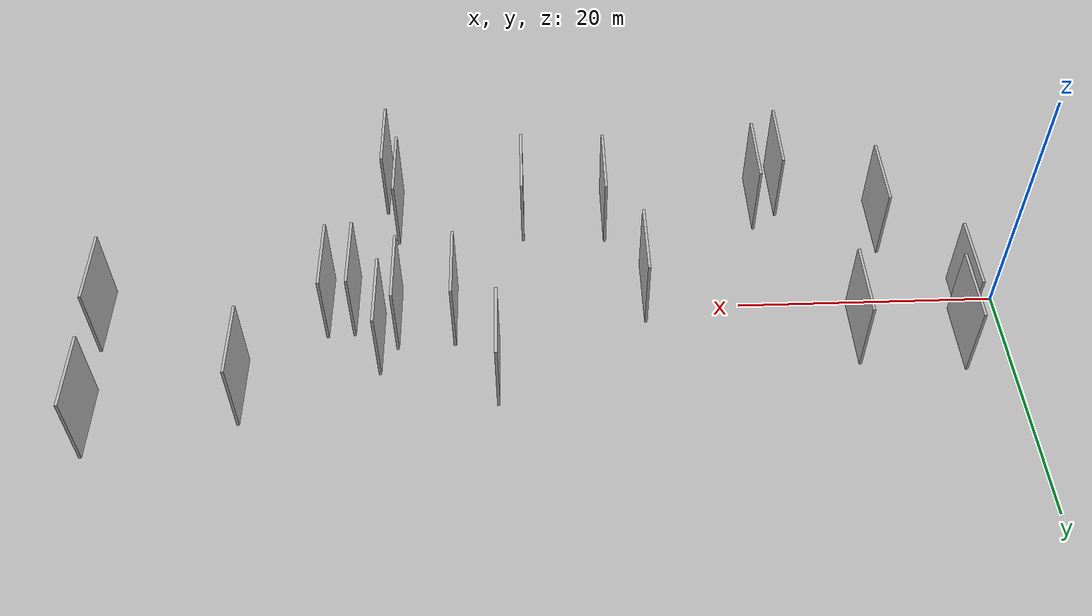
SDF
<?xml version="1.0" encoding="utf-8"?>

<sdf version="1.6">

   <world name="default">

      <gui fullscreen="0">

         <camera name="user_camera">

            <pose>-15 0 4.57585 0 0 0</pose>

            <view_controller>orbit</view_controller>

         </camera>

      </gui>

      <scene>

         <sky>

           <clouds>

             <speed>12</speed>

           </clouds>

         </sky>

         <ambient>0.4 0.4 0.4 1</ambient>

         <background>0.7 0.7 0.7 1</background>

         <shadows>1</shadows>

      </scene>

      <gravity>0 0 -9.8066</gravity>

      <magnetic_field>6e-06 2.3e-05 -4.2e-05</magnetic_field>

      <physics default="0" name="default_physics" type="ode">

         <ode>

            <solver>

               <type>quick</type>

               <iters>10</iters>

               <sor>1.0</sor>

               <use_dynamic_moi_rescaling>0</use_dynamic_moi_rescaling>

            </solver>

            <constraints>

               <cfm>0</cfm>

               <erp>0.2</erp>

               <contact_max_correcting_vel>100</contact_max_correcting_vel>

               <contact_surface_layer>0.001</contact_surface_layer>

            </constraints>

         </ode>

         <max_step_size>0.004</max_step_size>

         <real_time_factor>1</real_time_factor>

         <real_time_update_rate>250</real_time_update_rate>

      </physics>

      <light name="sun" type="directional">

         <cast_shadows>1</cast_shadows>

         <pose>0 0 10 0 0 0</pose>

         <diffuse>0.8 0.8 0.8 1</diffuse>

         <specular>0.2 0.2 0.2 1</specular>

         <attenuation>

            <range>1000</range>

            <constant>0.9</constant>

            <linear>0.01</linear>

            <quadratic>0.001</quadratic>

         </attenuation>

         <direction>-0.5 0.1 -0.9</direction>

      </light>

      <include>

         <name>ground_plane_1</name>

         <uri>model://HANNAS_ground_plane</uri>

         <pose>0 0 0  0 0 0</pose>

      </include>

      <include>

         <name>ground_plane_2</name>

         <uri>model://HANNAS_ground_plane</uri>

         <pose>100 0 0  0 0 0</pose>

      </include>

      <model name="HANNAS_wall_1">

         <static>1</static>

         <pose frame="">38.8019 8.1428 2.5 0.000000 0.000000 1.570796</pose>

         <link name="link">

            <pose frame="">0 0 3.00 0 0 0</pose>

            <collision name="collision">

               <geometry>

                  <box>

                     <size>6.00 0.2 6.00</size>

                  </box>

               </geometry>

               <max_contacts>10</max_contacts>

               <surface>

                  <contact>

                     <ode/>

                  </contact>

                  <bounce/>

                  <friction>

                     <torsional>

                        <ode/>

                     </torsional>

                     <ode/>

                  </friction>

               </surface>

            </collision>

            <visual name="visual">

               <cast_shadows>0</cast_shadows>

               <geometry>

                  <box>

                     <size>6.00 0.2 6.00</size>

                  </box>

               </geometry>

               <material>

                  <script>

                     <uri>model://HANNAS_wall/materials/scripts</uri>

                     <uri>model://HANNAS_wall/materials/textures</uri>

                     <name>vrc/HANNAS_wall</name>

                  </script>

               </material>

            </visual>

            <self_collide>0</self_collide>

            <enable_wind>0</enable_wind>

            <kinematic>0</kinematic>

         </link>

      </model>

      <model name="HANNAS_wall_2">

         <static>1</static>

         <pose frame="">67.8202 11.7239 2.5 0.000000 0.000000 1.570796</pose>

         <link name="link">

            <pose frame="">0 0 3.00 0 0 0</pose>

            <collision name="collision">

               <geometry>

                  <box>

                     <size>6.00 0.2 6.00</size>

                  </box>

               </geometry>

               <max_contacts>10</max_contacts>

               <surface>

                  <contact>

                     <ode/>

                  </contact>

                  <bounce/>

                  <friction>

                     <torsional>

                        <ode/>

                     </torsional>

                     <ode/>

                  </friction>

               </surface>

            </collision>

            <visual name="visual">

               <cast_shadows>0</cast_shadows>

               <geometry>

                  <box>

                     <size>6.00 0.2 6.00</size>

                  </box>

               </geometry>

               <material>

                  <script>

                     <uri>model://HANNAS_wall/materials/scripts</uri>

                     <uri>model://HANNAS_wall/materials/textures</uri>

                     <name>vrc/HANNAS_wall</name>

                  </script>

               </material>

            </visual>

            <self_collide>0</self_collide>

            <enable_wind>0</enable_wind>

            <kinematic>0</kinematic>

         </link>

      </model>

      <model name="HANNAS_wall_3">

         <static>1</static>

         <pose frame="">27.6856 0.5977 2.5 0.000000 0.000000 1.570796</pose>

         <link name="link">

            <pose frame="">0 0 3.00 0 0 0</pose>

            <collision name="collision">

               <geometry>

                  <box>

                     <size>6.00 0.2 6.00</size>

                  </box>

               </geometry>

               <max_contacts>10</max_contacts>

               <surface>

                  <contact>

                     <ode/>

                  </contact>

                  <bounce/>

                  <friction>

                     <torsional>

                        <ode/>

                     </torsional>

                     <ode/>

                  </friction>

               </surface>

            </collision>

            <visual name="visual">

               <cast_shadows>0</cast_shadows>

               <geometry>

                  <box>

                     <size>6.00 0.2 6.00</size>

                  </box>

               </geometry>

               <material>

                  <script>

                     <uri>model://HANNAS_wall/materials/scripts</uri>

                     <uri>model://HANNAS_wall/materials/textures</uri>

                     <name>vrc/HANNAS_wall</name>

                  </script>

               </material>

            </visual>

            <self_collide>0</self_collide>

            <enable_wind>0</enable_wind>

            <kinematic>0</kinematic>

         </link>

      </model>

      <model name="HANNAS_wall_4">

         <static>1</static>

         <pose frame="">46.6783 -8.3228 2.5 0.000000 0.000000 1.570796</pose>

         <link name="link">

            <pose frame="">0 0 3.00 0 0 0</pose>

            <collision name="collision">

               <geometry>

                  <box>

                     <size>6.00 0.2 6.00</size>

                  </box>

               </geometry>

               <max_contacts>10</max_contacts>

               <surface>

                  <contact>

                     <ode/>

                  </contact>

                  <bounce/>

                  <friction>

                     <torsional>

                        <ode/>

                     </torsional>

                     <ode/>

                  </friction>

               </surface>

            </collision>

            <visual name="visual">

               <cast_shadows>0</cast_shadows>

               <geometry>

                  <box>

                     <size>6.00 0.2 6.00</size>

                  </box>

               </geometry>

               <material>

                  <script>

                     <uri>model://HANNAS_wall/materials/scripts</uri>

                     <uri>model://HANNAS_wall/materials/textures</uri>

                     <name>vrc/HANNAS_wall</name>

                  </script>

               </material>

            </visual>

            <self_collide>0</self_collide>

            <enable_wind>0</enable_wind>

            <kinematic>0</kinematic>

         </link>

      </model>

      <model name="HANNAS_wall_5">

         <static>1</static>

         <pose frame="">8.8817 -6.0696 2.5 0.000000 0.000000 1.570796</pose>

         <link name="link">

            <pose frame="">0 0 3.00 0 0 0</pose>

            <collision name="collision">

               <geometry>

                  <box>

                     <size>6.00 0.2 6.00</size>

                  </box>

               </geometry>

               <max_contacts>10</max_contacts>

               <surface>

                  <contact>

                     <ode/>

                  </contact>

                  <bounce/>

                  <friction>

                     <torsional>

                        <ode/>

                     </torsional>

                     <ode/>

                  </friction>

               </surface>

            </collision>

            <visual name="visual">

               <cast_shadows>0</cast_shadows>

               <geometry>

                  <box>

                     <size>6.00 0.2 6.00</size>

                  </box>

               </geometry>

               <material>

                  <script>

                     <uri>model://HANNAS_wall/materials/scripts</uri>

                     <uri>model://HANNAS_wall/materials/textures</uri>

                     <name>vrc/HANNAS_wall</name>

                  </script>

               </material>

            </visual>

            <self_collide>0</self_collide>

            <enable_wind>0</enable_wind>

            <kinematic>0</kinematic>

         </link>

      </model>

      <model name="HANNAS_wall_6">

         <static>1</static>

         <pose frame="">12.2418 5.2225 2.5 0.000000 0.000000 1.570796</pose>

         <link name="link">

            <pose frame="">0 0 3.00 0 0 0</pose>

            <collision name="collision">

               <geometry>

                  <box>

                     <size>6.00 0.2 6.00</size>

                  </box>

               </geometry>

               <max_contacts>10</max_contacts>

               <surface>

                  <contact>

                     <ode/>

                  </contact>

                  <bounce/>

                  <friction>

                     <torsional>

                        <ode/>

                     </torsional>

                     <ode/>

                  </friction>

               </surface>

            </collision>

            <visual name="visual">

               <cast_shadows>0</cast_shadows>

               <geometry>

                  <box>

                     <size>6.00 0.2 6.00</size>

                  </box>

               </geometry>

               <material>

                  <script>

                     <uri>model://HANNAS_wall/materials/scripts</uri>

                     <uri>model://HANNAS_wall/materials/textures</uri>

                     <name>vrc/HANNAS_wall</name>

                  </script>

               </material>

            </visual>

            <self_collide>0</self_collide>

            <enable_wind>0</enable_wind>

            <kinematic>0</kinematic>

         </link>

      </model>

      <model name="HANNAS_wall_7">

         <static>1</static>

         <pose frame="">3.9170 2.8404 2.5 0.000000 0.000000 1.570796</pose>

         <link name="link">

            <pose frame="">0 0 3.00 0 0 0</pose>

            <collision name="collision">

               <geometry>

                  <box>

                     <size>6.00 0.2 6.00</size>

                  </box>

               </geometry>

               <max_contacts>10</max_contacts>

               <surface>

                  <contact>

                     <ode/>

                  </contact>

                  <bounce/>

                  <friction>

                     <torsional>

                        <ode/>

                     </torsional>

                     <ode/>

                  </friction>

               </surface>

            </collision>

            <visual name="visual">

               <cast_shadows>0</cast_shadows>

               <geometry>

                  <box>

                     <size>6.00 0.2 6.00</size>

                  </box>

               </geometry>

               <material>

                  <script>

                     <uri>model://HANNAS_wall/materials/scripts</uri>

                     <uri>model://HANNAS_wall/materials/textures</uri>

                     <name>vrc/HANNAS_wall</name>

                  </script>

               </material>

            </visual>

            <self_collide>0</self_collide>

            <enable_wind>0</enable_wind>

            <kinematic>0</kinematic>

         </link>

      </model>

      <model name="HANNAS_wall_8">

         <static>1</static>

         <pose frame="">68.2535 2.0715 2.5 0.000000 0.000000 1.570796</pose>

         <link name="link">

            <pose frame="">0 0 3.00 0 0 0</pose>

            <collision name="collision">

               <geometry>

                  <box>

                     <size>6.00 0.2 6.00</size>

                  </box>

               </geometry>

               <max_contacts>10</max_contacts>

               <surface>

                  <contact>

                     <ode/>

                  </contact>

                  <bounce/>

                  <friction>

                     <torsional>

                        <ode/>

                     </torsional>

                     <ode/>

                  </friction>

               </surface>

            </collision>

            <visual name="visual">

               <cast_shadows>0</cast_shadows>

               <geometry>

                  <box>

                     <size>6.00 0.2 6.00</size>

                  </box>

               </geometry>

               <material>

                  <script>

                     <uri>model://HANNAS_wall/materials/scripts</uri>

                     <uri>model://HANNAS_wall/materials/textures</uri>

                     <name>vrc/HANNAS_wall</name>

                  </script>

               </material>

            </visual>

            <self_collide>0</self_collide>

            <enable_wind>0</enable_wind>

            <kinematic>0</kinematic>

         </link>

      </model>

      <model name="HANNAS_wall_9">

         <static>1</static>

         <pose frame="">36.8243 -8.3083 2.5 0.000000 0.000000 1.570796</pose>

         <link name="link">

            <pose frame="">0 0 3.00 0 0 0</pose>

            <collision name="collision">

               <geometry>

                  <box>

                     <size>6.00 0.2 6.00</size>

                  </box>

               </geometry>

               <max_contacts>10</max_contacts>

               <surface>

                  <contact>

                     <ode/>

                  </contact>

                  <bounce/>

                  <friction>

                     <torsional>

                        <ode/>

                     </torsional>

                     <ode/>

                  </friction>

               </surface>

            </collision>

            <visual name="visual">

               <cast_shadows>0</cast_shadows>

               <geometry>

                  <box>

                     <size>6.00 0.2 6.00</size>

                  </box>

               </geometry>

               <material>

                  <script>

                     <uri>model://HANNAS_wall/materials/scripts</uri>

                     <uri>model://HANNAS_wall/materials/textures</uri>

                     <name>vrc/HANNAS_wall</name>

                  </script>

               </material>

            </visual>

            <self_collide>0</self_collide>

            <enable_wind>0</enable_wind>

            <kinematic>0</kinematic>

         </link>

      </model>

      <model name="HANNAS_wall_10">

         <static>1</static>

         <pose frame="">47.4307 5.0204 2.5 0.000000 0.000000 1.570796</pose>

         <link name="link">

            <pose frame="">0 0 3.00 0 0 0</pose>

            <collision name="collision">

               <geometry>

                  <box>

                     <size>6.00 0.2 6.00</size>

                  </box>

               </geometry>

               <max_contacts>10</max_contacts>

               <surface>

                  <contact>

                     <ode/>

                  </contact>

                  <bounce/>

                  <friction>

                     <torsional>

                        <ode/>

                     </torsional>

                     <ode/>

                  </friction>

               </surface>

            </collision>

            <visual name="visual">

               <cast_shadows>0</cast_shadows>

               <geometry>

                  <box>

                     <size>6.00 0.2 6.00</size>

                  </box>

               </geometry>

               <material>

                  <script>

                     <uri>model://HANNAS_wall/materials/scripts</uri>

                     <uri>model://HANNAS_wall/materials/textures</uri>

                     <name>vrc/HANNAS_wall</name>

                  </script>

               </material>

            </visual>

            <self_collide>0</self_collide>

            <enable_wind>0</enable_wind>

            <kinematic>0</kinematic>

         </link>

      </model>

      <model name="HANNAS_wall_11">

         <static>1</static>

         <pose frame="">42.0297 2.3910 2.5 0.000000 0.000000 1.570796</pose>

         <link name="link">

            <pose frame="">0 0 3.00 0 0 0</pose>

            <collision name="collision">

               <geometry>

                  <box>

                     <size>6.00 0.2 6.00</size>

                  </box>

               </geometry>

               <max_contacts>10</max_contacts>

               <surface>

                  <contact>

                     <ode/>

                  </contact>

                  <bounce/>

                  <friction>

                     <torsional>

                        <ode/>

                     </torsional>

                     <ode/>

                  </friction>

               </surface>

            </collision>

            <visual name="visual">

               <cast_shadows>0</cast_shadows>

               <geometry>

                  <box>

                     <size>6.00 0.2 6.00</size>

                  </box>

               </geometry>

               <material>

                  <script>

                     <uri>model://HANNAS_wall/materials/scripts</uri>

                     <uri>model://HANNAS_wall/materials/textures</uri>

                     <name>vrc/HANNAS_wall</name>

                  </script>

               </material>

            </visual>

            <self_collide>0</self_collide>

            <enable_wind>0</enable_wind>

            <kinematic>0</kinematic>

         </link>

      </model>

      <model name="HANNAS_wall_12">

         <static>1</static>

         <pose frame="">4.5498 5.9838 2.5 0.000000 0.000000 1.570796</pose>

         <link name="link">

            <pose frame="">0 0 3.00 0 0 0</pose>

            <collision name="collision">

               <geometry>

                  <box>

                     <size>6.00 0.2 6.00</size>

                  </box>

               </geometry>

               <max_contacts>10</max_contacts>

               <surface>

                  <contact>

                     <ode/>

                  </contact>

                  <bounce/>

                  <friction>

                     <torsional>

                        <ode/>

                     </torsional>

                     <ode/>

                  </friction>

               </surface>

            </collision>

            <visual name="visual">

               <cast_shadows>0</cast_shadows>

               <geometry>

                  <box>

                     <size>6.00 0.2 6.00</size>

                  </box>

               </geometry>

               <material>

                  <script>

                     <uri>model://HANNAS_wall/materials/scripts</uri>

                     <uri>model://HANNAS_wall/materials/textures</uri>

                     <name>vrc/HANNAS_wall</name>

                  </script>

               </material>

            </visual>

            <self_collide>0</self_collide>

            <enable_wind>0</enable_wind>

            <kinematic>0</kinematic>

         </link>

      </model>

      <model name="HANNAS_wall_13">

         <static>1</static>

         <pose frame="">47.7464 -11.7925 2.5 0.000000 0.000000 1.570796</pose>

         <link name="link">

            <pose frame="">0 0 3.00 0 0 0</pose>

            <collision name="collision">

               <geometry>

                  <box>

                     <size>6.00 0.2 6.00</size>

                  </box>

               </geometry>

               <max_contacts>10</max_contacts>

               <surface>

                  <contact>

                     <ode/>

                  </contact>

                  <bounce/>

                  <friction>

                     <torsional>

                        <ode/>

                     </torsional>

                     <ode/>

                  </friction>

               </surface>

            </collision>

            <visual name="visual">

               <cast_shadows>0</cast_shadows>

               <geometry>

                  <box>

                     <size>6.00 0.2 6.00</size>

                  </box>

               </geometry>

               <material>

                  <script>

                     <uri>model://HANNAS_wall/materials/scripts</uri>

                     <uri>model://HANNAS_wall/materials/textures</uri>

                     <name>vrc/HANNAS_wall</name>

                  </script>

               </material>

            </visual>

            <self_collide>0</self_collide>

            <enable_wind>0</enable_wind>

            <kinematic>0</kinematic>

         </link>

      </model>

      <model name="HANNAS_wall_14">

         <static>1</static>

         <pose frame="">46.2533 2.6578 2.5 0.000000 0.000000 1.570796</pose>

         <link name="link">

            <pose frame="">0 0 3.00 0 0 0</pose>

            <collision name="collision">

               <geometry>

                  <box>

                     <size>6.00 0.2 6.00</size>

                  </box>

               </geometry>

               <max_contacts>10</max_contacts>

               <surface>

                  <contact>

                     <ode/>

                  </contact>

                  <bounce/>

                  <friction>

                     <torsional>

                        <ode/>

                     </torsional>

                     <ode/>

                  </friction>

               </surface>

            </collision>

            <visual name="visual">

               <cast_shadows>0</cast_shadows>

               <geometry>

                  <box>

                     <size>6.00 0.2 6.00</size>

                  </box>

               </geometry>

               <material>

                  <script>

                     <uri>model://HANNAS_wall/materials/scripts</uri>

                     <uri>model://HANNAS_wall/materials/textures</uri>

                     <name>vrc/HANNAS_wall</name>

                  </script>

               </material>

            </visual>

            <self_collide>0</self_collide>

            <enable_wind>0</enable_wind>

            <kinematic>0</kinematic>

         </link>

      </model>

      <model name="HANNAS_wall_15">

         <static>1</static>

         <pose frame="">57.2317 9.2502 2.5 0.000000 0.000000 1.570796</pose>

         <link name="link">

            <pose frame="">0 0 3.00 0 0 0</pose>

            <collision name="collision">

               <geometry>

                  <box>

                     <size>6.00 0.2 6.00</size>

                  </box>

               </geometry>

               <max_contacts>10</max_contacts>

               <surface>

                  <contact>

                     <ode/>

                  </contact>

                  <bounce/>

                  <friction>

                     <torsional>

                        <ode/>

                     </torsional>

                     <ode/>

                  </friction>

               </surface>

            </collision>

            <visual name="visual">

               <cast_shadows>0</cast_shadows>

               <geometry>

                  <box>

                     <size>6.00 0.2 6.00</size>

                  </box>

               </geometry>

               <material>

                  <script>

                     <uri>model://HANNAS_wall/materials/scripts</uri>

                     <uri>model://HANNAS_wall/materials/textures</uri>

                     <name>vrc/HANNAS_wall</name>

                  </script>

               </material>

            </visual>

            <self_collide>0</self_collide>

            <enable_wind>0</enable_wind>

            <kinematic>0</kinematic>

         </link>

      </model>

      <model name="HANNAS_wall_16">

         <static>1</static>

         <pose frame="">51.5392 1.3216 2.5 0.000000 0.000000 1.570796</pose>

         <link name="link">

            <pose frame="">0 0 3.00 0 0 0</pose>

            <collision name="collision">

               <geometry>

                  <box>

                     <size>6.00 0.2 6.00</size>

                  </box>

               </geometry>

               <max_contacts>10</max_contacts>

               <surface>

                  <contact>

                     <ode/>

                  </contact>

                  <bounce/>

                  <friction>

                     <torsional>

                        <ode/>

                     </torsional>

                     <ode/>

                  </friction>

               </surface>

            </collision>

            <visual name="visual">

               <cast_shadows>0</cast_shadows>

               <geometry>

                  <box>

                     <size>6.00 0.2 6.00</size>

                  </box>

               </geometry>

               <material>

                  <script>

                     <uri>model://HANNAS_wall/materials/scripts</uri>

                     <uri>model://HANNAS_wall/materials/textures</uri>

                     <name>vrc/HANNAS_wall</name>

                  </script>

               </material>

            </visual>

            <self_collide>0</self_collide>

            <enable_wind>0</enable_wind>

            <kinematic>0</kinematic>

         </link>

      </model>

      <model name="HANNAS_wall_17">

         <static>1</static>

         <pose frame="">49.5455 1.1834 2.5 0.000000 0.000000 1.570796</pose>

         <link name="link">

            <pose frame="">0 0 3.00 0 0 0</pose>

            <collision name="collision">

               <geometry>

                  <box>

                     <size>6.00 0.2 6.00</size>

                  </box>

               </geometry>

               <max_contacts>10</max_contacts>

               <surface>

                  <contact>

                     <ode/>

                  </contact>

                  <bounce/>

                  <friction>

                     <torsional>

                        <ode/>

                     </torsional>

                     <ode/>

                  </friction>

               </surface>

            </collision>

            <visual name="visual">

               <cast_shadows>0</cast_shadows>

               <geometry>

                  <box>

                     <size>6.00 0.2 6.00</size>

                  </box>

               </geometry>

               <material>

                  <script>

                     <uri>model://HANNAS_wall/materials/scripts</uri>

                     <uri>model://HANNAS_wall/materials/textures</uri>

                     <name>vrc/HANNAS_wall</name>

                  </script>

               </material>

            </visual>

            <self_collide>0</self_collide>

            <enable_wind>0</enable_wind>

            <kinematic>0</kinematic>

         </link>

      </model>

      <model name="HANNAS_wall_18">

         <static>1</static>

         <pose frame="">30.3507 -8.0331 2.5 0.000000 0.000000 1.570796</pose>

         <link name="link">

            <pose frame="">0 0 3.00 0 0 0</pose>

            <collision name="collision">

               <geometry>

                  <box>

                     <size>6.00 0.2 6.00</size>

                  </box>

               </geometry>

               <max_contacts>10</max_contacts>

               <surface>

                  <contact>

                     <ode/>

                  </contact>

                  <bounce/>

                  <friction>

                     <torsional>

                        <ode/>

                     </torsional>

                     <ode/>

                  </friction>

               </surface>

            </collision>

            <visual name="visual">

               <cast_shadows>0</cast_shadows>

               <geometry>

                  <box>

                     <size>6.00 0.2 6.00</size>

                  </box>

               </geometry>

               <material>

                  <script>

                     <uri>model://HANNAS_wall/materials/scripts</uri>

                     <uri>model://HANNAS_wall/materials/textures</uri>

                     <name>vrc/HANNAS_wall</name>

                  </script>

               </material>

            </visual>

            <self_collide>0</self_collide>

            <enable_wind>0</enable_wind>

            <kinematic>0</kinematic>

         </link>

      </model>

      <model name="HANNAS_wall_19">

         <static>1</static>

         <pose frame="">18.3351 -9.0302 2.5 0.000000 0.000000 1.570796</pose>

         <link name="link">

            <pose frame="">0 0 3.00 0 0 0</pose>

            <collision name="collision">

               <geometry>

                  <box>

                     <size>6.00 0.2 6.00</size>

                  </box>

               </geometry>

               <max_contacts>10</max_contacts>

               <surface>

                  <contact>

                     <ode/>

                  </contact>

                  <bounce/>

                  <friction>

                     <torsional>

                        <ode/>

                     </torsional>

                     <ode/>

                  </friction>

               </surface>

            </collision>

            <visual name="visual">

               <cast_shadows>0</cast_shadows>

               <geometry>

                  <box>

                     <size>6.00 0.2 6.00</size>

                  </box>

               </geometry>

               <material>

                  <script>

                     <uri>model://HANNAS_wall/materials/scripts</uri>

                     <uri>model://HANNAS_wall/materials/textures</uri>

                     <name>vrc/HANNAS_wall</name>

                  </script>

               </material>

            </visual>

            <self_collide>0</self_collide>

            <enable_wind>0</enable_wind>

            <kinematic>0</kinematic>

         </link>

      </model>

      <model name="HANNAS_wall_20">

         <static>1</static>

         <pose frame="">16.3726 -10.5062 2.5 0.000000 0.000000 1.570796</pose>

         <link name="link">

            <pose frame="">0 0 3.00 0 0 0</pose>

            <collision name="collision">

               <geometry>

                  <box>

                     <size>6.00 0.2 6.00</size>

                  </box>

               </geometry>

               <max_contacts>10</max_contacts>

               <surface>

                  <contact>

                     <ode/>

                  </contact>

                  <bounce/>

                  <friction>

                     <torsional>

                        <ode/>

                     </torsional>

                     <ode/>

                  </friction>

               </surface>

            </collision>

            <visual name="visual">

               <cast_shadows>0</cast_shadows>

               <geometry>

                  <box>

                     <size>6.00 0.2 6.00</size>

                  </box>

               </geometry>

               <material>

                  <script>

                     <uri>model://HANNAS_wall/materials/scripts</uri>

                     <uri>model://HANNAS_wall/materials/textures</uri>

                     <name>vrc/HANNAS_wall</name>

                  </script>

               </material>

            </visual>

            <self_collide>0</self_collide>

            <enable_wind>0</enable_wind>

            <kinematic>0</kinematic>

         </link>

      </model>

   </world>

</sdf>

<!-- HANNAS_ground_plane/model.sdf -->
<sdf version="1.4">
<model name="HANNAS_ground_plane">
  <static>true</static>
    <link name="link">
      <collision name="collision">
        <geometry>
          <plane>
            <normal>0 0 1</normal>
            <size>1000 1000</size>
          </plane>
        </geometry>
        <surface>
          <friction>
            <ode>
              <mu>100</mu>
              <mu2>50</mu2>
            </ode>
          </friction>
        </surface>
      </collision>
      <visual name="visual">
        <cast_shadows>false</cast_shadows>
        <geometry>
          <plane>
            <normal>0 0 1</normal>
            <size>1000 1000</size>
          </plane>
        </geometry>
        <material>
          <script>
            <uri>model://HANNAS_ground_plane/materials/scripts/HANNAS_ground_plane.material</uri>
	    <uri>model://HANNAS_ground_plane/materials/textures</uri>
            <name>HANNASGroundPlane/Image</name>
          </script>
        </material>
      </visual>
    </link>
  </model>
</sdf>
